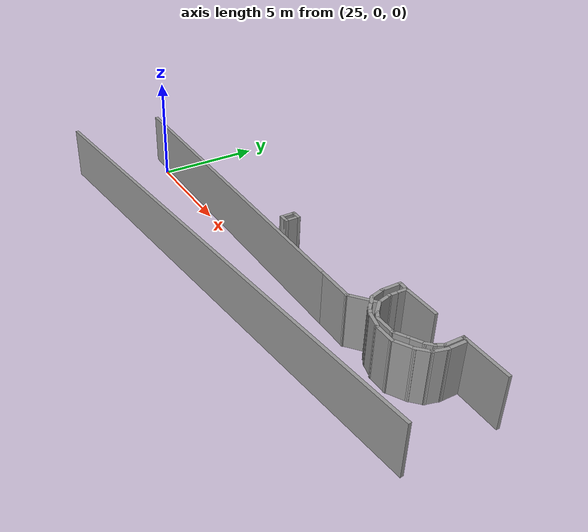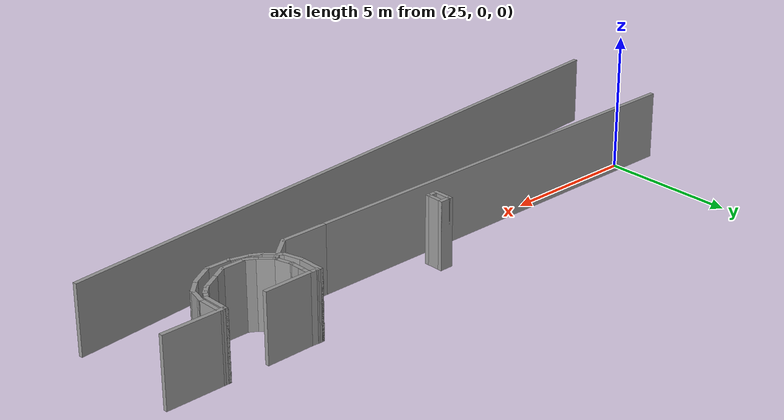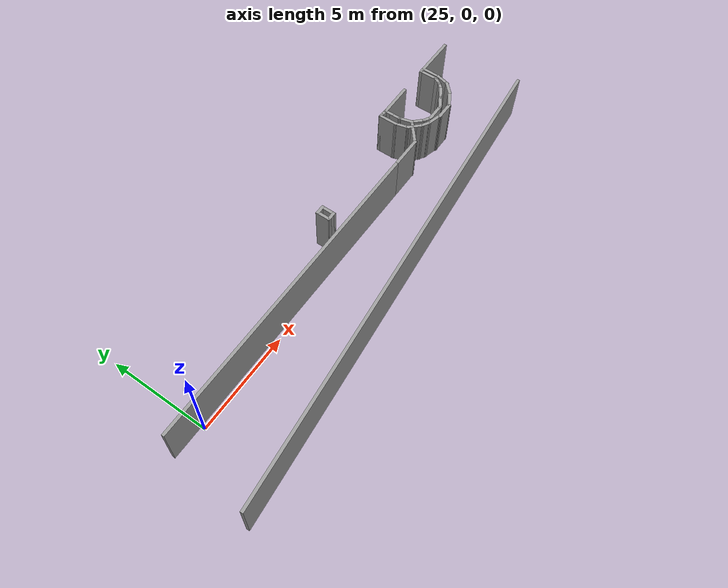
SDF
<sdf version="1.6">
 <model name="car_parking_underground_big_1">
  <pose>-9.36123 -7.37411 0 0 -0 0</pose>
  <link name="Wall_15">
   <collision name="Wall_15_Collision">
    <geometry><box><size>24.4088 0.15 2.5</size></box></geometry>
    <pose>0 0 1.25 0 -0 0</pose>
   </collision>
   <visual name="Wall_15_Visual">
    <pose>0 0 1.25 0 -0 0</pose>
    <geometry><box><size>24.4088 0.15 2.5</size></box></geometry>
    <material>
     <script><uri>file://media/materials/scripts/gazebo.material</uri><name>Gazebo/Grey</name></script>
     <ambient>1 1 1 1</ambient>
    </material>
    <meta><layer>0</layer></meta>
   </visual>
   <pose>44.4027 4.50585 0 0 -0 -3.05082</pose>
  </link>
  <link name="Wall_306">
   <collision name="Wall_306_Collision">
    <geometry><box><size>0.5 0.15 2.5</size></box></geometry>
    <pose>0 0 1.25 0 -0 0</pose>
   </collision>
   <visual name="Wall_306_Visual">
    <pose>0 0 1.25 0 -0 0</pose>
    <geometry><box><size>0.5 0.15 2.5</size></box></geometry>
    <material>
     <script><uri>file://media/materials/scripts/gazebo.material</uri><name>Gazebo/Grey</name></script>
     <ambient>1 1 1 1</ambient>
    </material>
    <meta><layer>0</layer></meta>
   </visual>
   <pose>44.5672 8.94547 0 0 -0 0</pose>
  </link>
  <link name="Wall_307">
   <collision name="Wall_307_Collision">
    <geometry><box><size>0.75 0.15 2.5</size></box></geometry>
    <pose>0 0 1.25 0 -0 0</pose>
   </collision>
   <visual name="Wall_307_Visual">
    <pose>0 0 1.25 0 -0 0</pose>
    <geometry><box><size>0.75 0.15 2.5</size></box></geometry>
    <material>
     <script><uri>file://media/materials/scripts/gazebo.material</uri><name>Gazebo/Grey</name></script>
     <ambient>1 1 1 1</ambient>
    </material>
    <meta><layer>0</layer></meta>
   </visual>
   <pose>44.7422 8.64547 0 0 -0 -1.5708</pose>
  </link>
  <link name="Wall_308">
   <collision name="Wall_308_Collision">
    <geometry><box><size>0.5 0.15 2.5</size></box></geometry>
    <pose>0 0 1.25 0 -0 0</pose>
   </collision>
   <visual name="Wall_308_Visual">
    <pose>0 0 1.25 0 -0 0</pose>
    <geometry><box><size>0.5 0.15 2.5</size></box></geometry>
    <material>
     <script><uri>file://media/materials/scripts/gazebo.material</uri><name>Gazebo/Grey</name></script>
     <ambient>1 1 1 1</ambient>
    </material>
    <meta><layer>0</layer></meta>
   </visual>
   <pose>44.5672 8.34547 0 0 -0 3.14159</pose>
  </link>
  <link name="Wall_309">
   <collision name="Wall_309_Collision">
    <geometry><box><size>0.75 0.15 2.5</size></box></geometry>
    <pose>0 0 1.25 0 -0 0</pose>
   </collision>
   <visual name="Wall_309_Visual">
    <pose>0 0 1.25 0 -0 0</pose>
    <geometry><box><size>0.75 0.15 2.5</size></box></geometry>
    <material>
     <script><uri>file://media/materials/scripts/gazebo.material</uri><name>Gazebo/Grey</name></script>
     <ambient>1 1 1 1</ambient>
    </material>
    <meta><layer>0</layer></meta>
   </visual>
   <pose>44.3922 8.64547 0 0 -0 1.5708</pose>
  </link>
  <link name="Wall_44">
   <collision name="Wall_44_Collision">
    <geometry><box><size>1.75 0.15 2.5</size></box></geometry>
    <pose>0 0 1.25 0 -0 0</pose>
   </collision>
   <visual name="Wall_44_Visual">
    <pose>0 0 1.25 0 -0 0</pose>
    <geometry><box><size>1.75 0.15 2.5</size></box></geometry>
    <material>
     <script><uri>file://media/materials/scripts/gazebo.material</uri><name>Gazebo/Grey</name></script>
     <ambient>1 1 1 1</ambient>
    </material>
    <meta><layer>0</layer></meta>
   </visual>
   <pose>49.4642 7.62976 0 0 -0 3.14159</pose>
  </link>
  <link name="Wall_45">
   <collision name="Wall_45_Collision">
    <geometry><box><size>16 0.15 2.5</size></box></geometry>
    <pose>0 0 1.25 0 -0 0</pose>
   </collision>
   <visual name="Wall_45_Visual">
    <pose>0 0 1.25 0 -0 0</pose>
    <geometry><box><size>16 0.15 2.5</size></box></geometry>
    <material>
     <script><uri>file://media/materials/scripts/gazebo.material</uri><name>Gazebo/Grey</name></script>
     <ambient>1 1 1 1</ambient>
    </material>
    <meta><layer>0</layer></meta>
   </visual>
   <pose>40.7392 7.62976 0 0 -0 3.14159</pose>
  </link>
  <link name="Wall_468">
   <collision name="Wall_468_Collision">
    <geometry><box><size>1.80929 0.15 2.5</size></box></geometry>
    <pose>0 0 1.25 0 -0 0</pose>
   </collision>
   <visual name="Wall_468_Visual">
    <pose>0 0 1.25 0 -0 0</pose>
    <geometry><box><size>1.80929 0.15 2.5</size></box></geometry>
    <material>
     <script><uri>file://media/materials/scripts/gazebo.material</uri><name>Gazebo/Grey</name></script>
     <ambient>1 1 1 1</ambient>
    </material>
    <meta><layer>0</layer></meta>
   </visual>
   <pose>51.8897 9.81705 0 0 -0 -3.1297</pose>
  </link>
  <link name="Wall_469">
   <collision name="Wall_469_Collision">
    <geometry><box><size>0.441492 0.15 2.5</size></box></geometry>
    <pose>0 0 1.25 0 -0 0</pose>
   </collision>
   <visual name="Wall_469_Visual">
    <pose>0 0 1.25 0 -0 0</pose>
    <geometry><box><size>0.441492 0.15 2.5</size></box></geometry>
    <material>
     <script><uri>file://media/materials/scripts/gazebo.material</uri><name>Gazebo/Grey</name></script>
     <ambient>1 1 1 1</ambient>
    </material>
    <meta><layer>0</layer></meta>
   </visual>
   <pose>50.9147 9.81705 0 0 -0 3.07387</pose>
  </link>
  <link name="Wall_471">
   <collision name="Wall_471_Collision">
    <geometry><box><size>0.25 0.15 2.5</size></box></geometry>
    <pose>0 0 1.25 0 -0 0</pose>
   </collision>
   <visual name="Wall_471_Visual">
    <pose>0 0 1.25 0 -0 0</pose>
    <geometry><box><size>0.25 0.15 2.5</size></box></geometry>
    <material>
     <script><uri>file://media/materials/scripts/gazebo.material</uri><name>Gazebo/Grey</name></script>
     <ambient>1 1 1 1</ambient>
    </material>
    <meta><layer>0</layer></meta>
   </visual>
   <pose>50.7193 9.82691 0 0 -0 3.14159</pose>
  </link>
  <link name="Wall_472">
   <collision name="Wall_472_Collision">
    <geometry><box><size>1 0.15 2.5</size></box></geometry>
    <pose>0 0 1.25 0 -0 0</pose>
   </collision>
   <visual name="Wall_472_Visual">
    <pose>0 0 1.25 0 -0 0</pose>
    <geometry><box><size>1 0.15 2.5</size></box></geometry>
    <material>
     <script><uri>file://media/materials/scripts/gazebo.material</uri><name>Gazebo/Grey</name></script>
     <ambient>1 1 1 1</ambient>
    </material>
    <meta><layer>0</layer></meta>
   </visual>
   <pose>50.6693 9.40191 0 0 -0 -1.5708</pose>
  </link>
  <link name="Wall_473">
   <collision name="Wall_473_Collision">
    <geometry><box><size>0.75 0.15 2.5</size></box></geometry>
    <pose>0 0 1.25 0 -0 0</pose>
   </collision>
   <visual name="Wall_473_Visual">
    <pose>0 0 1.25 0 -0 0</pose>
    <geometry><box><size>0.75 0.15 2.5</size></box></geometry>
    <material>
     <script><uri>file://media/materials/scripts/gazebo.material</uri><name>Gazebo/Grey</name></script>
     <ambient>1 1 1 1</ambient>
    </material>
    <meta><layer>0</layer></meta>
   </visual>
   <pose>50.7469 8.68713 0 0 -0 -1.309</pose>
  </link>
  <link name="Wall_474">
   <collision name="Wall_474_Collision">
    <geometry><box><size>0.5 0.15 2.5</size></box></geometry>
    <pose>0 0 1.25 0 -0 0</pose>
   </collision>
   <visual name="Wall_474_Visual">
    <pose>0 0 1.25 0 -0 0</pose>
    <geometry><box><size>0.5 0.15 2.5</size></box></geometry>
    <material>
     <script><uri>file://media/materials/scripts/gazebo.material</uri><name>Gazebo/Grey</name></script>
     <ambient>1 1 1 1</ambient>
    </material>
    <meta><layer>0</layer></meta>
   </visual>
   <pose>50.9483 8.27361 0 0 -0 -0.785398</pose>
  </link>
  <link name="Wall_475">
   <collision name="Wall_475_Collision">
    <geometry><box><size>0.5 0.15 2.5</size></box></geometry>
    <pose>0 0 1.25 0 -0 0</pose>
   </collision>
   <visual name="Wall_475_Visual">
    <pose>0 0 1.25 0 -0 0</pose>
    <geometry><box><size>0.5 0.15 2.5</size></box></geometry>
    <material>
     <script><uri>file://media/materials/scripts/gazebo.material</uri><name>Gazebo/Grey</name></script>
     <ambient>1 1 1 1</ambient>
    </material>
    <meta><layer>0</layer></meta>
   </visual>
   <pose>51.1958 8.02613 0 0 -0 -0.785398</pose>
  </link>
  <link name="Wall_476">
   <collision name="Wall_476_Collision">
    <geometry><box><size>0.5 0.15 2.5</size></box></geometry>
    <pose>0 0 1.25 0 -0 0</pose>
   </collision>
   <visual name="Wall_476_Visual">
    <pose>0 0 1.25 0 -0 0</pose>
    <geometry><box><size>0.5 0.15 2.5</size></box></geometry>
    <material>
     <script><uri>file://media/materials/scripts/gazebo.material</uri><name>Gazebo/Grey</name></script>
     <ambient>1 1 1 1</ambient>
    </material>
    <meta><layer>0</layer></meta>
   </visual>
   <pose>51.4711 7.81488 0 0 -0 -0.523599</pose>
  </link>
  <link name="Wall_477">
   <collision name="Wall_477_Collision">
    <geometry><box><size>0.75 0.15 2.5</size></box></geometry>
    <pose>0 0 1.25 0 -0 0</pose>
   </collision>
   <visual name="Wall_477_Visual">
    <pose>0 0 1.25 0 -0 0</pose>
    <geometry><box><size>0.75 0.15 2.5</size></box></geometry>
    <material>
     <script><uri>file://media/materials/scripts/gazebo.material</uri><name>Gazebo/Grey</name></script>
     <ambient>1 1 1 1</ambient>
    </material>
    <meta><layer>0</layer></meta>
   </visual>
   <pose>51.9124 7.64974 0 0 -0 -0.261799</pose>
  </link>
  <link name="Wall_478">
   <collision name="Wall_478_Collision">
    <geometry><box><size>0.25 0.15 2.5</size></box></geometry>
    <pose>0 0 1.25 0 -0 0</pose>
   </collision>
   <visual name="Wall_478_Visual">
    <pose>0 0 1.25 0 -0 0</pose>
    <geometry><box><size>0.25 0.15 2.5</size></box></geometry>
    <material>
     <script><uri>file://media/materials/scripts/gazebo.material</uri><name>Gazebo/Grey</name></script>
     <ambient>1 1 1 1</ambient>
    </material>
    <meta><layer>0</layer></meta>
   </visual>
   <pose>52.2455 7.54709 0 0 -0 -0.523599</pose>
  </link>
  <link name="Wall_479">
   <collision name="Wall_479_Collision">
    <geometry><box><size>1 0.15 2.5</size></box></geometry>
    <pose>0 0 1.25 0 -0 0</pose>
   </collision>
   <visual name="Wall_479_Visual">
    <pose>0 0 1.25 0 -0 0</pose>
    <geometry><box><size>1 0.15 2.5</size></box></geometry>
    <material>
     <script><uri>file://media/materials/scripts/gazebo.material</uri><name>Gazebo/Grey</name></script>
     <ambient>1 1 1 1</ambient>
    </material>
    <meta><layer>0</layer></meta>
   </visual>
   <pose>52.7138 7.52209 0 0 -0 0</pose>
  </link>
  <link name="Wall_480">
   <collision name="Wall_480_Collision">
    <geometry><box><size>1 0.15 2.5</size></box></geometry>
    <pose>0 0 1.25 0 -0 0</pose>
   </collision>
   <visual name="Wall_480_Visual">
    <pose>0 0 1.25 0 -0 0</pose>
    <geometry><box><size>1 0.15 2.5</size></box></geometry>
    <material>
     <script><uri>file://media/materials/scripts/gazebo.material</uri><name>Gazebo/Grey</name></script>
     <ambient>1 1 1 1</ambient>
    </material>
    <meta><layer>0</layer></meta>
   </visual>
   <pose>53.5069 7.73459 0 0 -0 0.523599</pose>
  </link>
  <link name="Wall_481">
   <collision name="Wall_481_Collision">
    <geometry><box><size>0.75 0.15 2.5</size></box></geometry>
    <pose>0 0 1.25 0 -0 0</pose>
   </collision>
   <visual name="Wall_481_Visual">
    <pose>0 0 1.25 0 -0 0</pose>
    <geometry><box><size>0.75 0.15 2.5</size></box></geometry>
    <material>
     <script><uri>file://media/materials/scripts/gazebo.material</uri><name>Gazebo/Grey</name></script>
     <ambient>1 1 1 1</ambient>
    </material>
    <meta><layer>0</layer></meta>
   </visual>
   <pose>54.0871 8.15922 0 0 -0 0.785398</pose>
  </link>
  <link name="Wall_482">
   <collision name="Wall_482_Collision">
    <geometry><box><size>0.75 0.15 2.5</size></box></geometry>
    <pose>0 0 1.25 0 -0 0</pose>
   </collision>
   <visual name="Wall_482_Visual">
    <pose>0 0 1.25 0 -0 0</pose>
    <geometry><box><size>0.75 0.15 2.5</size></box></geometry>
    <material>
     <script><uri>file://media/materials/scripts/gazebo.material</uri><name>Gazebo/Grey</name></script>
     <ambient>1 1 1 1</ambient>
    </material>
    <meta><layer>0</layer></meta>
   </visual>
   <pose>54.3768 8.66113 0 0 -0 1.309</pose>
  </link>
  <link name="Wall_483">
   <collision name="Wall_483_Collision">
    <geometry><box><size>1.02589 0.15 2.5</size></box></geometry>
    <pose>0 0 1.25 0 -0 0</pose>
   </collision>
   <visual name="Wall_483_Visual">
    <pose>0 0 1.25 0 -0 0</pose>
    <geometry><box><size>1.02589 0.15 2.5</size></box></geometry>
    <material>
     <script><uri>file://media/materials/scripts/gazebo.material</uri><name>Gazebo/Grey</name></script>
     <ambient>1 1 1 1</ambient>
    </material>
    <meta><layer>0</layer></meta>
   </visual>
   <pose>54.4562 9.38885 0 0 -0 1.56691</pose>
  </link>
  <link name="Wall_484">
   <collision name="Wall_484_Collision">
    <geometry><box><size>0.25 0.15 2.5</size></box></geometry>
    <pose>0 0 1.25 0 -0 0</pose>
   </collision>
   <visual name="Wall_484_Visual">
    <pose>0 0 1.25 0 -0 0</pose>
    <geometry><box><size>0.25 0.15 2.5</size></box></geometry>
    <material>
     <script><uri>file://media/materials/scripts/gazebo.material</uri><name>Gazebo/Grey</name></script>
     <ambient>1 1 1 1</ambient>
    </material>
    <meta><layer>0</layer></meta>
   </visual>
   <pose>54.4079 9.82679 0 0 -0 3.14159</pose>
  </link>
  <link name="Wall_485">
   <collision name="Wall_485_Collision">
    <geometry><box><size>0.25 0.15 2.5</size></box></geometry>
    <pose>0 0 1.25 0 -0 0</pose>
   </collision>
   <visual name="Wall_485_Visual">
    <pose>0 0 1.25 0 -0 0</pose>
    <geometry><box><size>0.25 0.15 2.5</size></box></geometry>
    <material>
     <script><uri>file://media/materials/scripts/gazebo.material</uri><name>Gazebo/Grey</name></script>
     <ambient>1 1 1 1</ambient>
    </material>
    <meta><layer>0</layer></meta>
   </visual>
   <pose>54.3079 9.82679 0 0 -0 3.14159</pose>
  </link>
  <link name="Wall_486">
   <collision name="Wall_486_Collision">
    <geometry><box><size>1 0.15 2.5</size></box></geometry>
    <pose>0 0 1.25 0 -0 0</pose>
   </collision>
   <visual name="Wall_486_Visual">
    <pose>0 0 1.25 0 -0 0</pose>
    <geometry><box><size>1 0.15 2.5</size></box></geometry>
    <material>
     <script><uri>file://media/materials/scripts/gazebo.material</uri><name>Gazebo/Grey</name></script>
     <ambient>1 1 1 1</ambient>
    </material>
    <meta><layer>0</layer></meta>
   </visual>
   <pose>54.2579 9.40179 0 0 -0 -1.5708</pose>
  </link>
  <link name="Wall_487">
   <collision name="Wall_487_Collision">
    <geometry><box><size>0.5 0.15 2.5</size></box></geometry>
    <pose>0 0 1.25 0 -0 0</pose>
   </collision>
   <visual name="Wall_487_Visual">
    <pose>0 0 1.25 0 -0 0</pose>
    <geometry><box><size>0.5 0.15 2.5</size></box></geometry>
    <material>
     <script><uri>file://media/materials/scripts/gazebo.material</uri><name>Gazebo/Grey</name></script>
     <ambient>1 1 1 1</ambient>
    </material>
    <meta><layer>0</layer></meta>
   </visual>
   <pose>54.1704 8.82524 0 0 -0 -2.0944</pose>
  </link>
  <link name="Wall_488">
   <collision name="Wall_488_Collision">
    <geometry><box><size>0.5 0.15 2.5</size></box></geometry>
    <pose>0 0 1.25 0 -0 0</pose>
   </collision>
   <visual name="Wall_488_Visual">
    <pose>0 0 1.25 0 -0 0</pose>
    <geometry><box><size>0.5 0.15 2.5</size></box></geometry>
    <material>
     <script><uri>file://media/materials/scripts/gazebo.material</uri><name>Gazebo/Grey</name></script>
     <ambient>1 1 1 1</ambient>
    </material>
    <meta><layer>0</layer></meta>
   </visual>
   <pose>53.9592 8.54994 0 0 -0 -2.35619</pose>
  </link>
  <link name="Wall_489">
   <collision name="Wall_489_Collision">
    <geometry><box><size>0.75 0.15 2.5</size></box></geometry>
    <pose>0 0 1.25 0 -0 0</pose>
   </collision>
   <visual name="Wall_489_Visual">
    <pose>0 0 1.25 0 -0 0</pose>
    <geometry><box><size>0.75 0.15 2.5</size></box></geometry>
    <material>
     <script><uri>file://media/materials/scripts/gazebo.material</uri><name>Gazebo/Grey</name></script>
     <ambient>1 1 1 1</ambient>
    </material>
    <meta><layer>0</layer></meta>
   </visual>
   <pose>53.5756 8.2762 0 0 -0 -2.61799</pose>
  </link>
  <link name="Wall_490">
   <collision name="Wall_490_Collision">
    <geometry><box><size>0.75 0.15 2.5</size></box></geometry>
    <pose>0 0 1.25 0 -0 0</pose>
   </collision>
   <visual name="Wall_490_Visual">
    <pose>0 0 1.25 0 -0 0</pose>
    <geometry><box><size>0.75 0.15 2.5</size></box></geometry>
    <material>
     <script><uri>file://media/materials/scripts/gazebo.material</uri><name>Gazebo/Grey</name></script>
     <ambient>1 1 1 1</ambient>
    </material>
    <meta><layer>0</layer></meta>
   </visual>
   <pose>53.056 7.9762 0 0 -0 -2.61799</pose>
  </link>
  <link name="Wall_491">
   <collision name="Wall_491_Collision">
    <geometry><box><size>1 0.15 2.5</size></box></geometry>
    <pose>0 0 1.25 0 -0 0</pose>
   </collision>
   <visual name="Wall_491_Visual">
    <pose>0 0 1.25 0 -0 0</pose>
    <geometry><box><size>1 0.15 2.5</size></box></geometry>
    <material>
     <script><uri>file://media/materials/scripts/gazebo.material</uri><name>Gazebo/Grey</name></script>
     <ambient>1 1 1 1</ambient>
    </material>
    <meta><layer>0</layer></meta>
   </visual>
   <pose>52.3712 7.8262 0 0 -0 3.14159</pose>
  </link>
  <link name="Wall_492">
   <collision name="Wall_492_Collision">
    <geometry><box><size>0.5 0.15 2.5</size></box></geometry>
    <pose>0 0 1.25 0 -0 0</pose>
   </collision>
   <visual name="Wall_492_Visual">
    <pose>0 0 1.25 0 -0 0</pose>
    <geometry><box><size>0.5 0.15 2.5</size></box></geometry>
    <material>
     <script><uri>file://media/materials/scripts/gazebo.material</uri><name>Gazebo/Grey</name></script>
     <ambient>1 1 1 1</ambient>
    </material>
    <meta><layer>0</layer></meta>
   </visual>
   <pose>51.7946 7.9137 0 0 -0 2.61799</pose>
  </link>
  <link name="Wall_493">
   <collision name="Wall_493_Collision">
    <geometry><box><size>0.75 0.15 2.5</size></box></geometry>
    <pose>0 0 1.25 0 -0 0</pose>
   </collision>
   <visual name="Wall_493_Visual">
    <pose>0 0 1.25 0 -0 0</pose>
    <geometry><box><size>0.75 0.15 2.5</size></box></geometry>
    <material>
     <script><uri>file://media/materials/scripts/gazebo.material</uri><name>Gazebo/Grey</name></script>
     <ambient>1 1 1 1</ambient>
    </material>
    <meta><layer>0</layer></meta>
   </visual>
   <pose>51.4309 8.21333 0 0 -0 2.35619</pose>
  </link>
  <link name="Wall_494">
   <collision name="Wall_494_Collision">
    <geometry><box><size>0.75 0.15 2.5</size></box></geometry>
    <pose>0 0 1.25 0 -0 0</pose>
   </collision>
   <visual name="Wall_494_Visual">
    <pose>0 0 1.25 0 -0 0</pose>
    <geometry><box><size>0.75 0.15 2.5</size></box></geometry>
    <material>
     <script><uri>file://media/materials/scripts/gazebo.material</uri><name>Gazebo/Grey</name></script>
     <ambient>1 1 1 1</ambient>
    </material>
    <meta><layer>0</layer></meta>
   </visual>
   <pose>51.1412 8.71524 0 0 -0 1.8326</pose>
  </link>
  <link name="Wall_495">
   <collision name="Wall_495_Collision">
    <geometry><box><size>0.15 0.15 2.5</size></box></geometry>
    <pose>0 0 1.25 0 -0 0</pose>
   </collision>
   <visual name="Wall_495_Visual">
    <pose>0 0 1.25 0 -0 0</pose>
    <geometry><box><size>0.15 0.15 2.5</size></box></geometry>
    <material>
     <script><uri>file://media/materials/scripts/gazebo.material</uri><name>Gazebo/Grey</name></script>
     <ambient>1 1 1 1</ambient>
    </material>
    <meta><layer>0</layer></meta>
   </visual>
   <pose>51.0635 9.00502 0 0 -0 0</pose>
  </link>
  <link name="Wall_496">
   <collision name="Wall_496_Collision">
    <geometry><box><size>0.602182 0.15 2.5</size></box></geometry>
    <pose>0 0 1.25 0 -0 0</pose>
   </collision>
   <visual name="Wall_496_Visual">
    <pose>0 0 1.25 0 -0 0</pose>
    <geometry><box><size>0.602182 0.15 2.5</size></box></geometry>
    <material>
     <script><uri>file://media/materials/scripts/gazebo.material</uri><name>Gazebo/Grey</name></script>
     <ambient>1 1 1 1</ambient>
    </material>
    <meta><layer>0</layer></meta>
   </visual>
   <pose>51.0618 9.2311 0 0 -0 1.57834</pose>
  </link>
  <link name="Wall_497">
   <collision name="Wall_497_Collision">
    <geometry><box><size>0.5 0.15 2.5</size></box></geometry>
    <pose>0 0 1.25 0 -0 0</pose>
   </collision>
   <visual name="Wall_497_Visual">
    <pose>0 0 1.25 0 -0 0</pose>
    <geometry><box><size>0.5 0.15 2.5</size></box></geometry>
    <material>
     <script><uri>file://media/materials/scripts/gazebo.material</uri><name>Gazebo/Grey</name></script>
     <ambient>1 1 1 1</ambient>
    </material>
    <meta><layer>0</layer></meta>
   </visual>
   <pose>51.0667 9.63219 0 0 -0 1.5708</pose>
  </link>
  <link name="Wall_499">
   <collision name="Wall_499_Collision">
    <geometry><box><size>2.25 0.15 2.5</size></box></geometry>
    <pose>0 0 1.25 0 -0 0</pose>
   </collision>
   <visual name="Wall_499_Visual">
    <pose>0 0 1.25 0 -0 0</pose>
    <geometry><box><size>2.25 0.15 2.5</size></box></geometry>
    <material>
     <script><uri>file://media/materials/scripts/gazebo.material</uri><name>Gazebo/Grey</name></script>
     <ambient>1 1 1 1</ambient>
    </material>
    <meta><layer>0</layer></meta>
   </visual>
   <pose>55.4079 9.82679 0 0 -0 0</pose>
  </link>
  <link name="Wall_600">
   <collision name="Wall_600_Collision">
    <geometry><box><size>1.39276 0.15 2.5</size></box></geometry>
    <pose>0 0 1.25 0 -0 0</pose>
   </collision>
   <visual name="Wall_600_Visual">
    <pose>0 0 1.25 0 -0 0</pose>
    <geometry><box><size>1.39276 0.15 2.5</size></box></geometry>
    <material>
     <script><uri>file://media/materials/scripts/gazebo.material</uri><name>Gazebo/Grey</name></script>
     <ambient>1 1 1 1</ambient>
    </material>
    <meta><layer>0</layer></meta>
   </visual>
   <pose>50.7415 8.02761 0 0 -0 0.694854</pose>
  </link>
  <static>1</static>
 </model>
</sdf>
